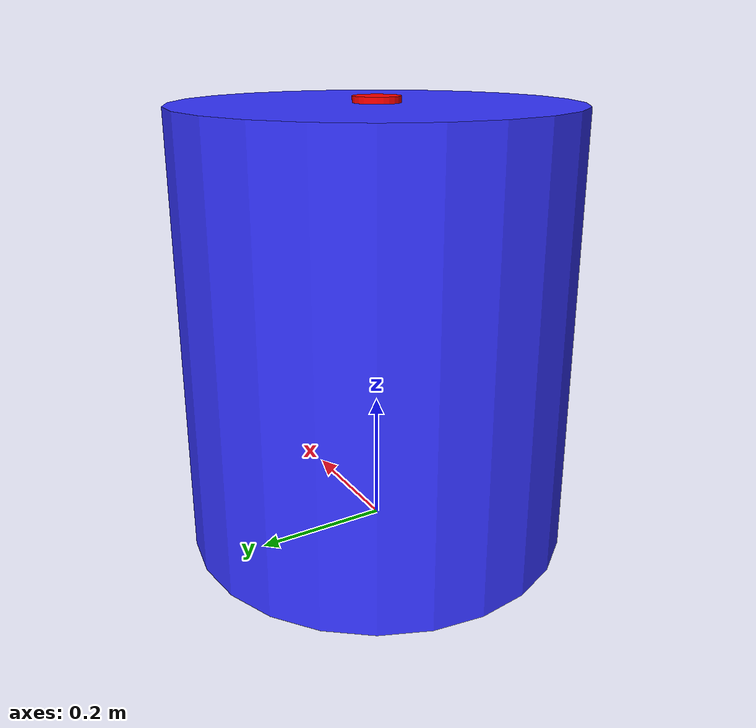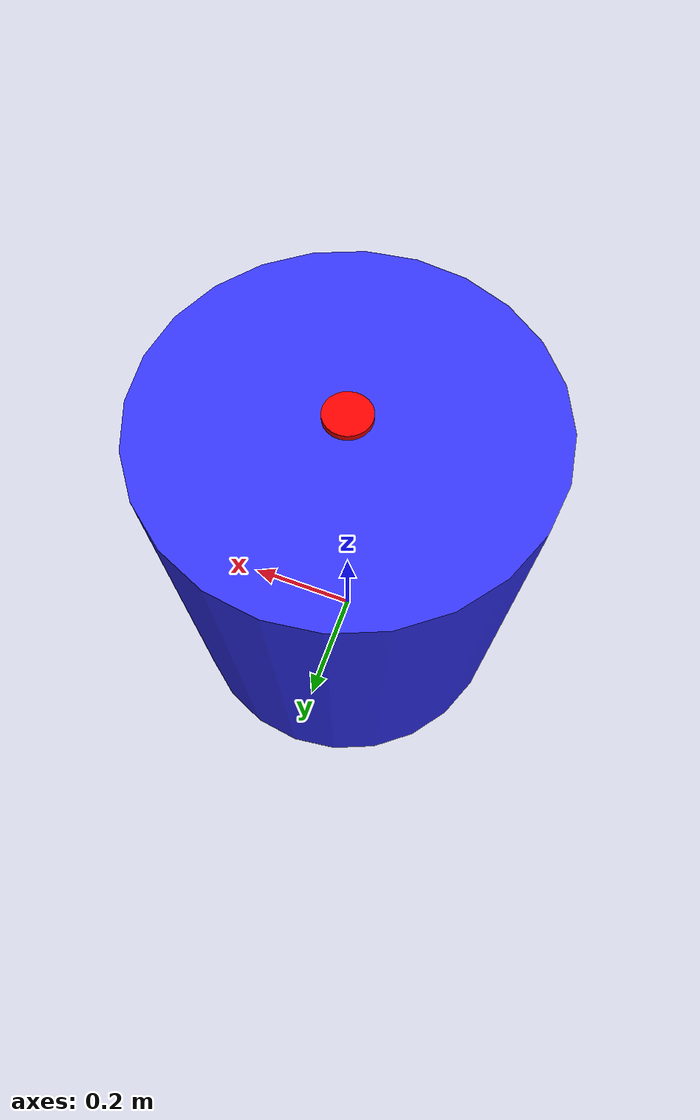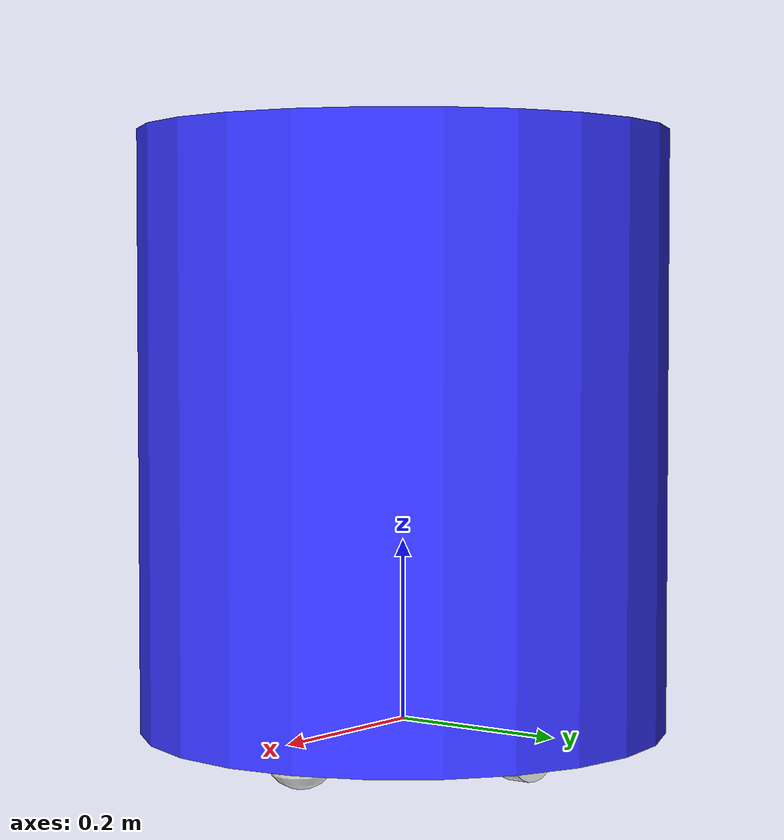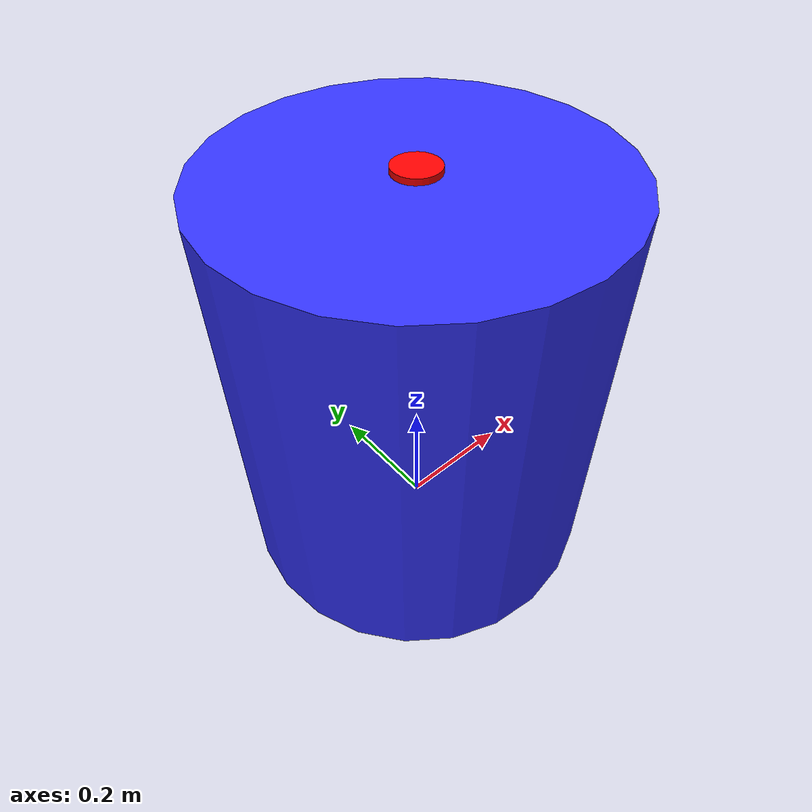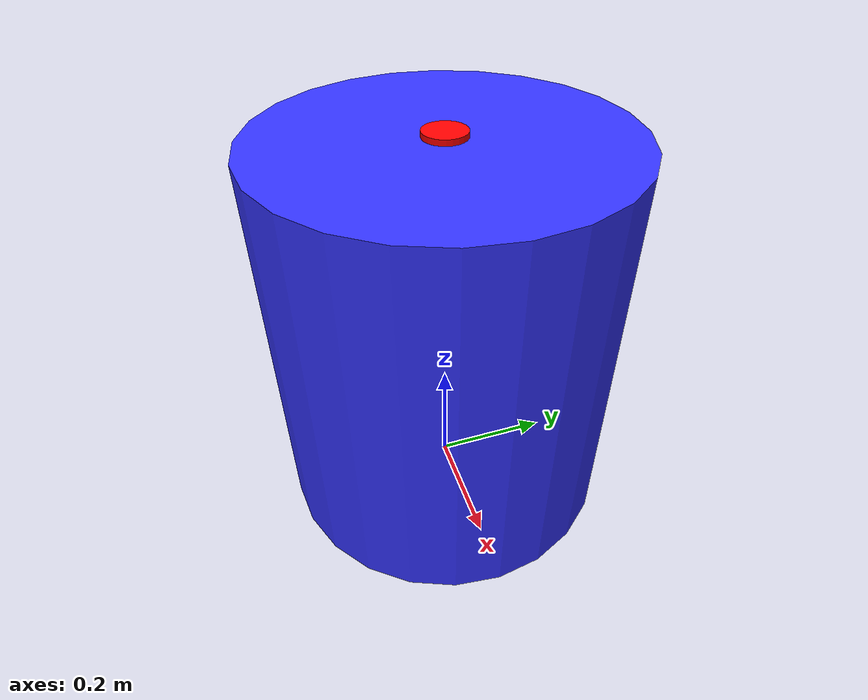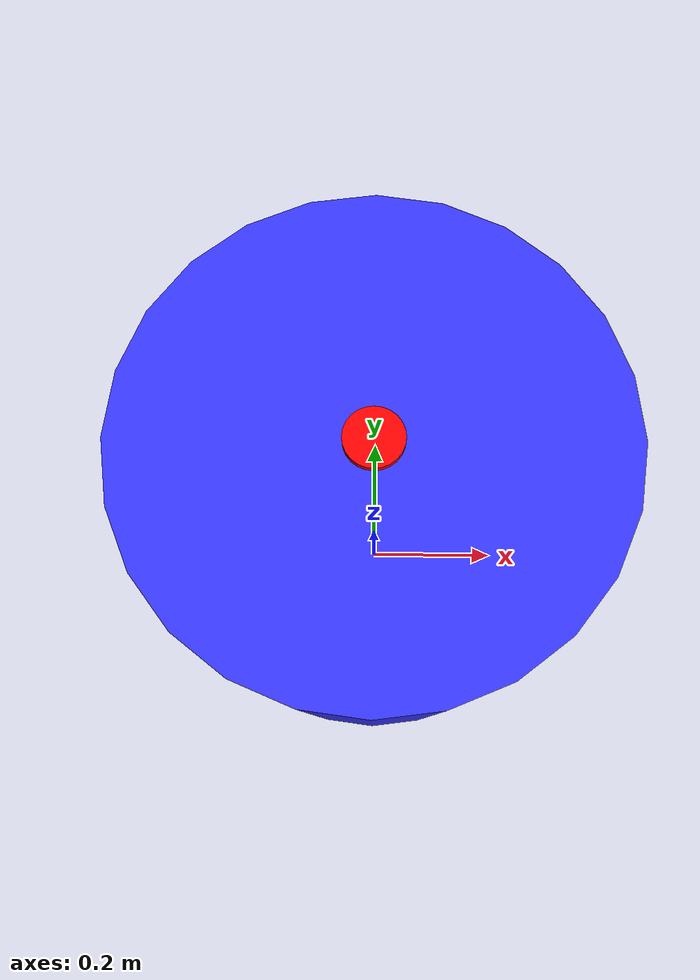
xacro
<?xml version="1.0"?>
<robot xmlns:xacro="http://www.ros.org/wiki/xacro"  name="robot">

    <xacro:arg name="use_ros2_control" default="true"/>
    <xacro:arg name="sim_mode" default="false"/>

    <xacro:include filename="robot_core.xacro" />

    <xacro:if value="$(arg use_ros2_control)">
        <xacro:include filename="ros2_control.xacro" />
    </xacro:if>
    <xacro:unless value="$(arg use_ros2_control)">
        <xacro:include filename="gazebo_control.xacro" />
    </xacro:unless>
    <xacro:include filename="lidar.xacro" />
    <!--xacro:include filename="camera.xacro" /-->

    <!--xacro:include filename="face.xacro" /-->

</robot>

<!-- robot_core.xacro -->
<robot xmlns:xacro="http://www.ros.org/wiki/xacro" >

    <xacro:include filename="inertial_macros.xacro"/>

    <xacro:property name="chassis_radius" value="0.292375"/>
    <xacro:property name="chassis_height" value="0.663103892"/>
    <xacro:property name="chassis_mass" value="13.0"/>
    <xacro:property name="wheel_radius" value="0.05"/>
    <xacro:property name="wheel_thickness" value="0.025"/>
    <xacro:property name="wheel_mass" value="0.2494"/>
    <xacro:property name="wheel_offset_x" value="0.0"/>
    <xacro:property name="wheel_offset_y" value="0.165"/>
    <xacro:property name="wheel_offset_z" value="0.01"/>
    <xacro:property name="caster_wheel_radius" value="0.04"/>
    <xacro:property name="caster_wheel_mass" value="0.073417"/>
    <xacro:property name="caster_wheel_offset_x" value="0.1779"/>
    <xacro:property name="caster_wheel_offset_z" value="0"/>

    <material name="white">
        <color rgba="1 1 1 1" />
    </material>

    <material name="orange">
        <color rgba="1 0.3 0.1 1"/>
    </material>

    <material name="blue">
        <color rgba="0.2 0.2 1 1"/>
    </material>

    <material name="black">
        <color rgba="0 0 0 1"/>
    </material>

    <material name="red">
        <color rgba="1 0 0 1"/>
    </material>

    <!-- BASE LINK -->

    <link name="base_link">

    </link>

    <!-- BASE_FOOTPRINT LINK -->

    <joint name="base_footprint_joint" type="fixed">
        <parent link="base_link"/>
        <child link="base_footprint"/>
        <origin xyz="0 0 0" rpy="0 0 0"/>
    </joint>

    <link name="base_footprint">
    </link>

    <!-- CHASSIS LINK -->

    <joint name="chassis_joint" type="fixed">
        <parent link="base_link"/>
        <child link="chassis"/>
        <origin xyz="${-wheel_offset_x} 0 ${-wheel_offset_z}"/>
    </joint>

    <link name="chassis">
    <visual>
        <origin xyz="0 0 ${chassis_height/2}"/>
        <geometry>
            <!-- Change the box geometry to a cylinder -->
            <cylinder radius="${chassis_radius}" length="${chassis_height}"/>
        </geometry>
        <material name="blue"/>
    </visual>
    <collision>
        <origin xyz="0 0 ${chassis_height/2}"/>
        <geometry>
            <!-- Change the box collision geometry to a cylinder -->
            <cylinder radius="${chassis_radius}" length="${chassis_height}"/>
        </geometry>
    </collision>
    <!-- Use xacro:inertial_cylinder for inertial properties -->
    <xacro:inertial_cylinder mass="13.0" radius="${chassis_radius}" length="${chassis_height}">
        <origin xyz="0 0 ${chassis_height/2}" rpy="0 0 0"/>
    </xacro:inertial_cylinder>
</link>

    <gazebo reference="chassis">
        <material>Gazebo/blue</material>
    </gazebo>

    <!-- LEFT WHEEL LINK -->

    <joint name="left_wheel_joint" type="continuous">
        <parent link="base_link"/>
        <child link="left_wheel"/>
        <origin xyz="0 ${wheel_offset_y} 0" rpy="-${pi/2} 0 0" />
        <axis xyz="0 0 1"/>
    </joint>

    <link name="left_wheel">
        <visual>
            <geometry>
                <cylinder radius="${wheel_radius}" length="${wheel_thickness}"/>
            </geometry>
            <material name="white"/>
        </visual>
        <collision>
            <geometry>
                <cylinder radius="${wheel_radius}" length="${wheel_thickness}"/>
            </geometry>
        </collision>
        <xacro:inertial_cylinder mass="${wheel_mass}" length="${wheel_thickness}" radius="${wheel_radius}">
            <origin xyz="0 0 0" rpy="0 0 0"/>
        </xacro:inertial_cylinder>
    </link>

    <gazebo reference="left_wheel">
        <material>Gazebo/Blue</material>
    </gazebo>

    <!-- RIGHT WHEEL LINK -->

    <joint name="right_wheel_joint" type="continuous">
        <parent link="base_link"/>
        <child link="right_wheel"/>
        <origin xyz="0 ${-wheel_offset_y} 0" rpy="${pi/2} 0 0" />
        <axis xyz="0 0 -1"/>
    </joint>

    <link name="right_wheel">
        <visual>
            <geometry>
                <cylinder radius="${wheel_radius}" length="${wheel_thickness}"/>
            </geometry>
            <material name="white"/>
        </visual>
        <collision>
            <geometry>
                <cylinder radius="${wheel_radius}" length="${wheel_thickness}"/>
            </geometry>
        </collision>
        <xacro:inertial_cylinder mass="${wheel_mass}" length="${wheel_thickness}" radius="${wheel_radius}">
            <origin xyz="0 0 0" rpy="0 0 0"/>
        </xacro:inertial_cylinder>
    </link>

    <gazebo reference="right_wheel">
        <material>Gazebo/Blue</material>
    </gazebo>

    <!-- CASTER WHEEL LINK FORWARD-->

    <joint name="caster_wheel_joint_forward" type="fixed">
        <parent link="chassis"/>
        <child link="caster_wheel_forward"/>
        <origin xyz="${caster_wheel_offset_x} 0 ${caster_wheel_offset_z}"/>
    </joint>

    <link name="caster_wheel_forward">
        <visual>
            <geometry>
                <sphere radius="${caster_wheel_radius}"/>
            </geometry>
            <material name="white"/>
        </visual>
        <collision>
            <geometry>
                <sphere radius="${caster_wheel_radius}"/>
            </geometry>
        </collision>
        <xacro:inertial_sphere mass="${caster_wheel_mass}" radius="${caster_wheel_radius}">
            <origin xyz="0 0 0" rpy="0 0 0"/>
        </xacro:inertial_sphere>
    </link>

    <gazebo reference="caster_wheel_forward">
        <material>Gazebo/White</material>
        <mu1 value="0.002"/>
        <mu2 value="0.002"/>
    </gazebo>
   <!-- CASTER WHEEL LINK BACKWARD-->

    <joint name="caster_wheel_joint_backward" type="fixed">
        <parent link="chassis"/>
        <child link="caster_wheel_backward"/>
        <origin xyz="${-caster_wheel_offset_x} 0 ${caster_wheel_offset_z}"/>
    </joint>

    <link name="caster_wheel_backward">
        <visual>
            <geometry>
                <sphere radius="${caster_wheel_radius}"/>
            </geometry>
            <material name="white"/>
        </visual>
        <collision>
            <geometry>
                <sphere radius="${caster_wheel_radius}"/>
            </geometry>
        </collision>
        <xacro:inertial_sphere mass="${caster_wheel_mass}" radius="${caster_wheel_radius}">
            <origin xyz="0 0 0" rpy="0 0 0"/>
        </xacro:inertial_sphere>
    </link>

    <gazebo reference="caster_wheel_backward">
        <material>Gazebo/White</material>
        <mu1 value="0.002"/>
        <mu2 value="0.002"/>
    </gazebo>

</robot>

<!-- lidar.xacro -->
<robot xmlns:xacro="http://www.ros.org/wiki/xacro" >

    <joint name="laser_joint" type="fixed">
        <parent link="chassis"/>
        <child link="laser_frame"/>
        <origin xyz="0 0 0.663103892" rpy="0 0 0"/>
    </joint>

    <link name="laser_frame">
        <visual>
            <geometry>
                <cylinder radius="0.03471" length="0.01874"/>
            </geometry>
            <material name="red"/>
        </visual>
        <visual>
            <origin xyz="0 0 0"/>
            <geometry>
                <cylinder radius="0.03471" length="0.01874"/>
            </geometry>
            <material name="black"/>
        </visual>
        <collision>
            <geometry>
                <cylinder radius="0.03471" length="0.01874"/>
            </geometry>
        </collision>
        <xacro:inertial_cylinder mass="0.1" radius="0.03471" length="0.01874">
            <origin xyz="0 0 0" rpy="0 0 0"/>
        </xacro:inertial_cylinder>
    </link>

    <gazebo reference="laser_frame">
        <material>Gazebo/Black</material>

        <sensor name="laser" type="ray">
            <pose> 0 0 0 0 0 0 </pose>
            <visualize>false</visualize>
            <update_rate>10</update_rate>
            <ray>
                <scan>
                    <horizontal>
                        <samples>360</samples>
                        <min_angle>-3.14</min_angle>
                        <max_angle>3.14</max_angle>
                    </horizontal>
                </scan>
                <range>
                    <min>0.3</min>
                    <max>12</max>
                </range>
            </ray>
            <plugin name="laser_controller" filename="libgazebo_ros_ray_sensor.so">
                <ros>
                    <argument>~/out:=scan</argument>
                </ros>
                <output_type>sensor_msgs/LaserScan</output_type>
                <frame_name>laser_frame</frame_name>
            </plugin>
        </sensor>
    </gazebo>

</robot>
